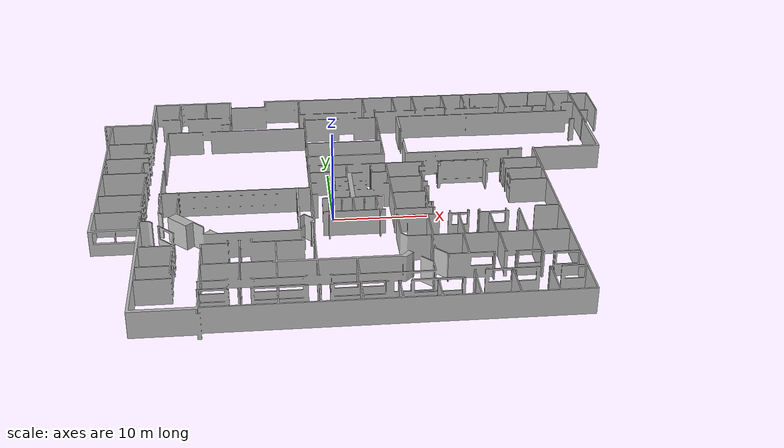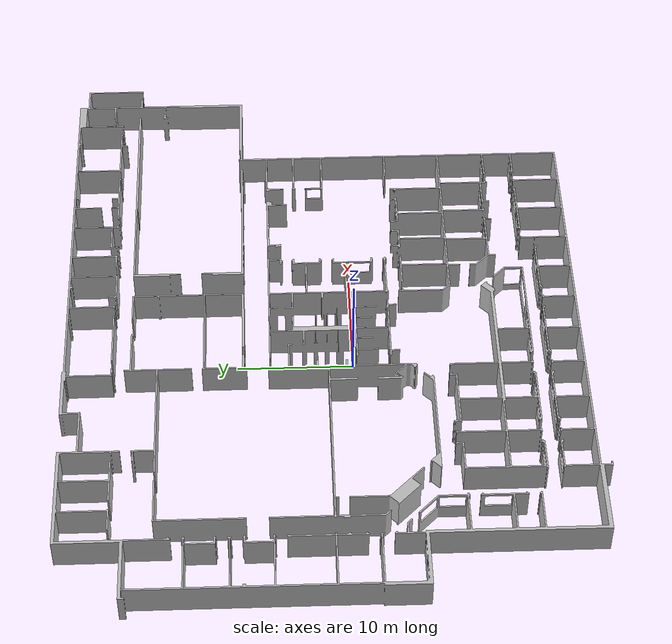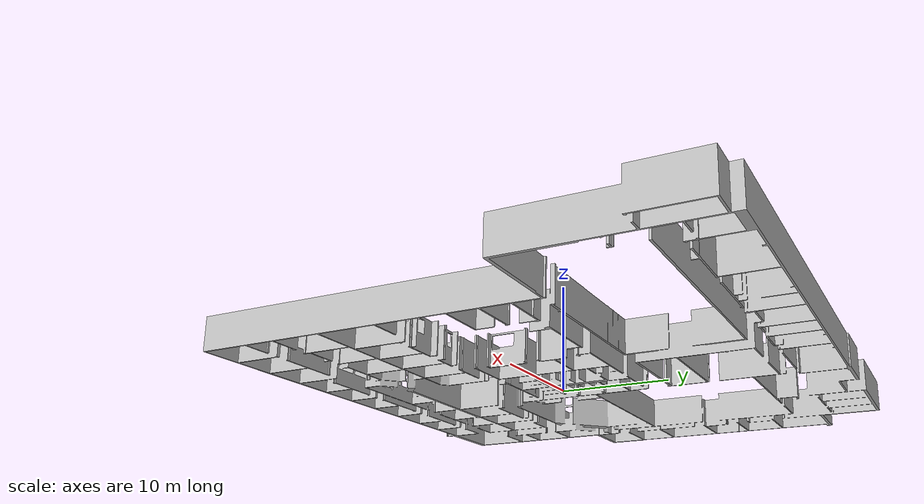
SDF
<?xml version="1.0" ?>
<sdf version="1.3">
  <model name="willow_mini">
    <static>true</static>
    <pose>-20 -20 0 0 0 0</pose>
    <link name="walls">
      <collision name="collision">
        <geometry>
          <mesh>
            <uri>model://willow_mini/meshes/willow_mini.dae</uri>
          </mesh>
        </geometry>
      </collision>
      <visual name="visual">
        <geometry>
          <mesh>
            <uri>model://willow_mini/meshes/willow_mini.dae</uri>
          </mesh>
        </geometry>
        <cast_shadows>false</cast_shadows>
      </visual>
    </link>
  </model>
</sdf>
